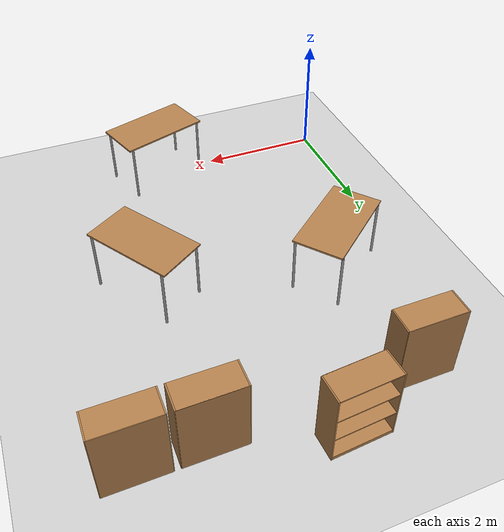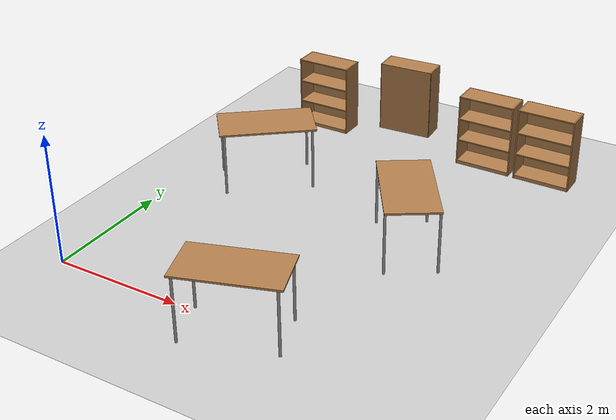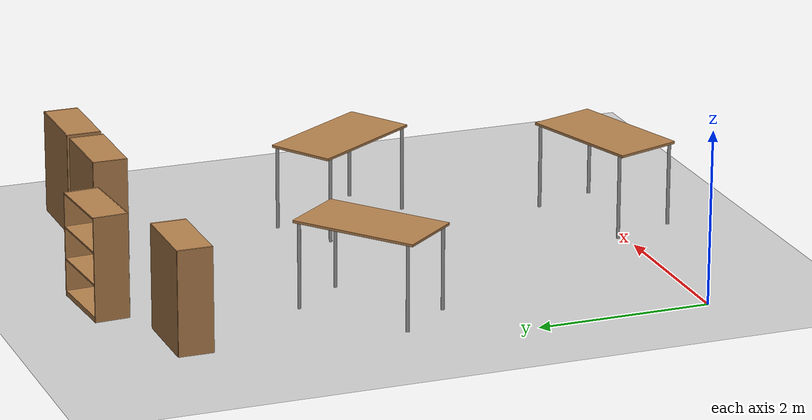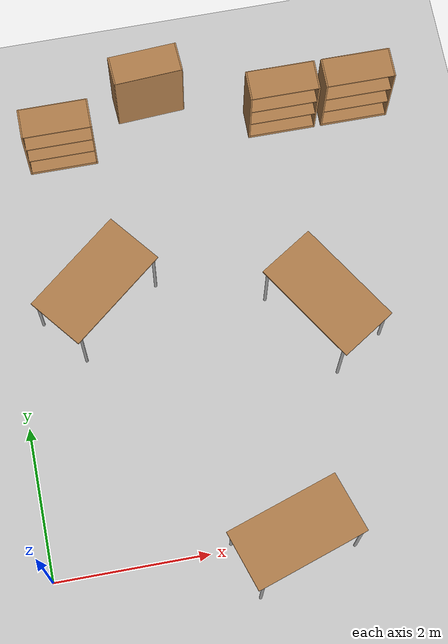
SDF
<sdf version="1.4">
 <world name="default">
  <model name="ground_plane">
   <static>1</static>
   <link name="link">
    <collision name="collision">
     <geometry><plane><normal>0 0 1</normal><size>100 100</size></plane></geometry>
     <surface><friction><ode><mu>100</mu><mu2>50</mu2></ode></friction></surface>
    </collision>
    <visual name="visual">
     <cast_shadows>0</cast_shadows>
     <geometry><plane><normal>0 0 1</normal><size>100 100</size></plane></geometry>
     <material>
      <script><uri>file://media/materials/scripts/gazebo.material</uri><name>Gazebo/Grey</name></script>
     </material>
    </visual>
    <velocity_decay><linear>0</linear><angular>0</angular></velocity_decay>
   </link>
  </model>
  <model name="table3">
   <static>1</static>
   <link name="link">
    <collision name="surface">
     <pose>0 0 1 0 -0 0</pose>
     <geometry><box><size>1.5 0.8 0.03</size></box></geometry>
     <surface><friction><ode><mu>0.6</mu><mu2>0.6</mu2></ode></friction></surface>
    </collision>
    <visual name="visual1">
     <pose>0 0 1 0 -0 0</pose>
     <geometry><box><size>1.5 0.8 0.03</size></box></geometry>
     <material>
      <script><uri>file://media/materials/scripts/gazebo.material</uri><name>Gazebo/Wood</name></script>
     </material>
    </visual>
    <collision name="front_left_leg">
     <pose>0.68 0.38 0.5 0 -0 0</pose>
     <geometry><cylinder><radius>0.02</radius><length>1</length></cylinder></geometry>
    </collision>
    <visual name="front_left_leg">
     <pose>0.68 0.38 0.5 0 -0 0</pose>
     <geometry><cylinder><radius>0.02</radius><length>1</length></cylinder></geometry>
     <material>
      <script><uri>file://media/materials/scripts/gazebo.material</uri><name>Gazebo/Grey</name></script>
     </material>
    </visual>
    <collision name="front_right_leg">
     <pose>0.68 -0.38 0.5 0 -0 0</pose>
     <geometry><cylinder><radius>0.02</radius><length>1</length></cylinder></geometry>
    </collision>
    <visual name="front_right_leg">
     <pose>0.68 -0.38 0.5 0 -0 0</pose>
     <geometry><cylinder><radius>0.02</radius><length>1</length></cylinder></geometry>
     <material>
      <script><uri>file://media/materials/scripts/gazebo.material</uri><name>Gazebo/Grey</name></script>
     </material>
    </visual>
    <collision name="back_right_leg">
     <pose>-0.68 -0.38 0.5 0 -0 0</pose>
     <geometry><cylinder><radius>0.02</radius><length>1</length></cylinder></geometry>
    </collision>
    <visual name="back_right_leg">
     <pose>-0.68 -0.38 0.5 0 -0 0</pose>
     <geometry><cylinder><radius>0.02</radius><length>1</length></cylinder></geometry>
     <material>
      <script><uri>file://media/materials/scripts/gazebo.material</uri><name>Gazebo/Grey</name></script>
     </material>
    </visual>
    <collision name="back_left_leg">
     <pose>-0.68 0.38 0.5 0 -0 0</pose>
     <geometry><cylinder><radius>0.02</radius><length>1</length></cylinder></geometry>
    </collision>
    <visual name="back_left_leg">
     <pose>-0.68 0.38 0.5 0 -0 0</pose>
     <geometry><cylinder><radius>0.02</radius><length>1</length></cylinder></geometry>
     <material>
      <script><uri>file://media/materials/scripts/gazebo.material</uri><name>Gazebo/Grey</name></script>
     </material>
    </visual>
    <velocity_decay><linear>0</linear><angular>0</angular></velocity_decay>
   </link>
   <pose>3.99958 2.80958 0 0 0 -1</pose>
  </model>
  <model name="table5">
   <static>1</static>
   <link name="link">
    <collision name="surface">
     <pose>0 0 1 0 -0 0</pose>
     <geometry><box><size>1.5 0.8 0.03</size></box></geometry>
     <surface><friction><ode><mu>0.6</mu><mu2>0.6</mu2></ode></friction></surface>
    </collision>
    <visual name="visual1">
     <pose>0 0 1 0 -0 0</pose>
     <geometry><box><size>1.5 0.8 0.03</size></box></geometry>
     <material>
      <script><uri>file://media/materials/scripts/gazebo.material</uri><name>Gazebo/Wood</name></script>
     </material>
    </visual>
    <collision name="front_left_leg">
     <pose>0.68 0.38 0.5 0 -0 0</pose>
     <geometry><cylinder><radius>0.02</radius><length>1</length></cylinder></geometry>
    </collision>
    <visual name="front_left_leg">
     <pose>0.68 0.38 0.5 0 -0 0</pose>
     <geometry><cylinder><radius>0.02</radius><length>1</length></cylinder></geometry>
     <material>
      <script><uri>file://media/materials/scripts/gazebo.material</uri><name>Gazebo/Grey</name></script>
     </material>
    </visual>
    <collision name="front_right_leg">
     <pose>0.68 -0.38 0.5 0 -0 0</pose>
     <geometry><cylinder><radius>0.02</radius><length>1</length></cylinder></geometry>
    </collision>
    <visual name="front_right_leg">
     <pose>0.68 -0.38 0.5 0 -0 0</pose>
     <geometry><cylinder><radius>0.02</radius><length>1</length></cylinder></geometry>
     <material>
      <script><uri>file://media/materials/scripts/gazebo.material</uri><name>Gazebo/Grey</name></script>
     </material>
    </visual>
    <collision name="back_right_leg">
     <pose>-0.68 -0.38 0.5 0 -0 0</pose>
     <geometry><cylinder><radius>0.02</radius><length>1</length></cylinder></geometry>
    </collision>
    <visual name="back_right_leg">
     <pose>-0.68 -0.38 0.5 0 -0 0</pose>
     <geometry><cylinder><radius>0.02</radius><length>1</length></cylinder></geometry>
     <material>
      <script><uri>file://media/materials/scripts/gazebo.material</uri><name>Gazebo/Grey</name></script>
     </material>
    </visual>
    <collision name="back_left_leg">
     <pose>-0.68 0.38 0.5 0 -0 0</pose>
     <geometry><cylinder><radius>0.02</radius><length>1</length></cylinder></geometry>
    </collision>
    <visual name="back_left_leg">
     <pose>-0.68 0.38 0.5 0 -0 0</pose>
     <geometry><cylinder><radius>0.02</radius><length>1</length></cylinder></geometry>
     <material>
      <script><uri>file://media/materials/scripts/gazebo.material</uri><name>Gazebo/Grey</name></script>
     </material>
    </visual>
    <velocity_decay><linear>0</linear><angular>0</angular></velocity_decay>
   </link>
   <pose>3.03624 -0.068461 0 0 -0 0.32</pose>
  </model>
  <model name="table8">
   <static>1</static>
   <link name="link">
    <collision name="surface">
     <pose>0 0 1 0 -0 0</pose>
     <geometry><box><size>1.5 0.8 0.03</size></box></geometry>
     <surface><friction><ode><mu>0.6</mu><mu2>0.6</mu2></ode></friction></surface>
    </collision>
    <visual name="visual1">
     <pose>0 0 1 0 -0 0</pose>
     <geometry><box><size>1.5 0.8 0.03</size></box></geometry>
     <material>
      <script><uri>file://media/materials/scripts/gazebo.material</uri><name>Gazebo/Wood</name></script>
     </material>
    </visual>
    <collision name="front_left_leg">
     <pose>0.68 0.38 0.5 0 -0 0</pose>
     <geometry><cylinder><radius>0.02</radius><length>1</length></cylinder></geometry>
    </collision>
    <visual name="front_left_leg">
     <pose>0.68 0.38 0.5 0 -0 0</pose>
     <geometry><cylinder><radius>0.02</radius><length>1</length></cylinder></geometry>
     <material>
      <script><uri>file://media/materials/scripts/gazebo.material</uri><name>Gazebo/Grey</name></script>
     </material>
    </visual>
    <collision name="front_right_leg">
     <pose>0.68 -0.38 0.5 0 -0 0</pose>
     <geometry><cylinder><radius>0.02</radius><length>1</length></cylinder></geometry>
    </collision>
    <visual name="front_right_leg">
     <pose>0.68 -0.38 0.5 0 -0 0</pose>
     <geometry><cylinder><radius>0.02</radius><length>1</length></cylinder></geometry>
     <material>
      <script><uri>file://media/materials/scripts/gazebo.material</uri><name>Gazebo/Grey</name></script>
     </material>
    </visual>
    <collision name="back_right_leg">
     <pose>-0.68 -0.38 0.5 0 -0 0</pose>
     <geometry><cylinder><radius>0.02</radius><length>1</length></cylinder></geometry>
    </collision>
    <visual name="back_right_leg">
     <pose>-0.68 -0.38 0.5 0 -0 0</pose>
     <geometry><cylinder><radius>0.02</radius><length>1</length></cylinder></geometry>
     <material>
      <script><uri>file://media/materials/scripts/gazebo.material</uri><name>Gazebo/Grey</name></script>
     </material>
    </visual>
    <collision name="back_left_leg">
     <pose>-0.68 0.38 0.5 0 -0 0</pose>
     <geometry><cylinder><radius>0.02</radius><length>1</length></cylinder></geometry>
    </collision>
    <visual name="back_left_leg">
     <pose>-0.68 0.38 0.5 0 -0 0</pose>
     <geometry><cylinder><radius>0.02</radius><length>1</length></cylinder></geometry>
     <material>
      <script><uri>file://media/materials/scripts/gazebo.material</uri><name>Gazebo/Grey</name></script>
     </material>
    </visual>
    <velocity_decay><linear>0</linear><angular>0</angular></velocity_decay>
   </link>
   <pose>1.16047 3.49208 0 0 -0 0.68</pose>
  </model>
  <model name="bookshelf2">
   <static>1</static>
   <link name="link">
    <inertial><mass>1</mass></inertial>
    <collision name="back">
     <pose>0 0.005 0.6 0 -0 0</pose>
     <geometry><box><size>0.9 0.01 1.2</size></box></geometry>
    </collision>
    <visual name="visual1">
     <pose>0 0.005 0.6 0 -0 0</pose>
     <geometry><box><size>0.9 0.01 1.2</size></box></geometry>
     <material>
      <script><uri>file://media/materials/scripts/gazebo.material</uri><name>Gazebo/Wood</name></script>
     </material>
    </visual>
    <collision name="left_side">
     <pose>0.45 -0.195 0.6 0 -0 0</pose>
     <geometry><box><size>0.02 0.4 1.2</size></box></geometry>
    </collision>
    <visual name="visual2">
     <pose>0.45 -0.195 0.6 0 -0 0</pose>
     <geometry><box><size>0.02 0.4 1.2</size></box></geometry>
     <material>
      <script><uri>file://media/materials/scripts/gazebo.material</uri><name>Gazebo/Wood</name></script>
     </material>
    </visual>
    <collision name="right_side">
     <pose>-0.45 -0.195 0.6 0 -0 0</pose>
     <geometry><box><size>0.02 0.4 1.2</size></box></geometry>
    </collision>
    <visual name="visual3">
     <pose>-0.45 -0.195 0.6 0 -0 0</pose>
     <geometry><box><size>0.02 0.4 1.2</size></box></geometry>
     <material>
      <script><uri>file://media/materials/scripts/gazebo.material</uri><name>Gazebo/Wood</name></script>
     </material>
    </visual>
    <collision name="bottom">
     <pose>0 -0.195 0.03 0 -0 0</pose>
     <geometry><box><size>0.88 0.4 0.06</size></box></geometry>
    </collision>
    <visual name="visual4">
     <pose>0 -0.195 0.03 0 -0 0</pose>
     <geometry><box><size>0.88 0.4 0.06</size></box></geometry>
     <material>
      <script><uri>file://media/materials/scripts/gazebo.material</uri><name>Gazebo/Wood</name></script>
     </material>
    </visual>
    <collision name="top">
     <pose>0 -0.195 1.19 0 -0 0</pose>
     <geometry><box><size>0.88 0.4 0.02</size></box></geometry>
    </collision>
    <visual name="visual5">
     <pose>0 -0.195 1.19 0 -0 0</pose>
     <geometry><box><size>0.88 0.4 0.02</size></box></geometry>
     <material>
      <script><uri>file://media/materials/scripts/gazebo.material</uri><name>Gazebo/Wood</name></script>
     </material>
    </visual>
    <collision name="low_shelf">
     <pose>0 -0.195 0.43 0 -0 0</pose>
     <geometry><box><size>0.88 0.4 0.02</size></box></geometry>
    </collision>
    <visual name="visual6">
     <pose>0 -0.195 0.43 0 -0 0</pose>
     <geometry><box><size>0.88 0.4 0.02</size></box></geometry>
     <material>
      <script><uri>file://media/materials/scripts/gazebo.material</uri><name>Gazebo/Wood</name></script>
     </material>
    </visual>
    <collision name="high_shelf">
     <pose>0 -0.195 0.8 0 -0 0</pose>
     <geometry><box><size>0.88 0.4 0.02</size></box></geometry>
    </collision>
    <visual name="visual7">
     <pose>0 -0.195 0.8 0 -0 0</pose>
     <geometry><box><size>0.88 0.4 0.02</size></box></geometry>
     <material>
      <script><uri>file://media/materials/scripts/gazebo.material</uri><name>Gazebo/Wood</name></script>
     </material>
    </visual>
    <velocity_decay><linear>0</linear><angular>0</angular></velocity_decay>
   </link>
   <pose>1 5.89 0 0 -0 0</pose>
  </model>
  <model name="bookshelf3">
   <static>1</static>
   <link name="link">
    <inertial><mass>1</mass></inertial>
    <collision name="back">
     <pose>0 0.005 0.6 0 -0 0</pose>
     <geometry><box><size>0.9 0.01 1.2</size></box></geometry>
    </collision>
    <visual name="visual1">
     <pose>0 0.005 0.6 0 -0 0</pose>
     <geometry><box><size>0.9 0.01 1.2</size></box></geometry>
     <material>
      <script><uri>file://media/materials/scripts/gazebo.material</uri><name>Gazebo/Wood</name></script>
     </material>
    </visual>
    <collision name="left_side">
     <pose>0.45 -0.195 0.6 0 -0 0</pose>
     <geometry><box><size>0.02 0.4 1.2</size></box></geometry>
    </collision>
    <visual name="visual2">
     <pose>0.45 -0.195 0.6 0 -0 0</pose>
     <geometry><box><size>0.02 0.4 1.2</size></box></geometry>
     <material>
      <script><uri>file://media/materials/scripts/gazebo.material</uri><name>Gazebo/Wood</name></script>
     </material>
    </visual>
    <collision name="right_side">
     <pose>-0.45 -0.195 0.6 0 -0 0</pose>
     <geometry><box><size>0.02 0.4 1.2</size></box></geometry>
    </collision>
    <visual name="visual3">
     <pose>-0.45 -0.195 0.6 0 -0 0</pose>
     <geometry><box><size>0.02 0.4 1.2</size></box></geometry>
     <material>
      <script><uri>file://media/materials/scripts/gazebo.material</uri><name>Gazebo/Wood</name></script>
     </material>
    </visual>
    <collision name="bottom">
     <pose>0 -0.195 0.03 0 -0 0</pose>
     <geometry><box><size>0.88 0.4 0.06</size></box></geometry>
    </collision>
    <visual name="visual4">
     <pose>0 -0.195 0.03 0 -0 0</pose>
     <geometry><box><size>0.88 0.4 0.06</size></box></geometry>
     <material>
      <script><uri>file://media/materials/scripts/gazebo.material</uri><name>Gazebo/Wood</name></script>
     </material>
    </visual>
    <collision name="top">
     <pose>0 -0.195 1.19 0 -0 0</pose>
     <geometry><box><size>0.88 0.4 0.02</size></box></geometry>
    </collision>
    <visual name="visual5">
     <pose>0 -0.195 1.19 0 -0 0</pose>
     <geometry><box><size>0.88 0.4 0.02</size></box></geometry>
     <material>
      <script><uri>file://media/materials/scripts/gazebo.material</uri><name>Gazebo/Wood</name></script>
     </material>
    </visual>
    <collision name="low_shelf">
     <pose>0 -0.195 0.43 0 -0 0</pose>
     <geometry><box><size>0.88 0.4 0.02</size></box></geometry>
    </collision>
    <visual name="visual6">
     <pose>0 -0.195 0.43 0 -0 0</pose>
     <geometry><box><size>0.88 0.4 0.02</size></box></geometry>
     <material>
      <script><uri>file://media/materials/scripts/gazebo.material</uri><name>Gazebo/Wood</name></script>
     </material>
    </visual>
    <collision name="high_shelf">
     <pose>0 -0.195 0.8 0 -0 0</pose>
     <geometry><box><size>0.88 0.4 0.02</size></box></geometry>
    </collision>
    <visual name="visual7">
     <pose>0 -0.195 0.8 0 -0 0</pose>
     <geometry><box><size>0.88 0.4 0.02</size></box></geometry>
     <material>
      <script><uri>file://media/materials/scripts/gazebo.material</uri><name>Gazebo/Wood</name></script>
     </material>
    </visual>
    <velocity_decay><linear>0</linear><angular>0</angular></velocity_decay>
   </link>
   <pose>2.29151 6.05753 0 0 0 -3.08</pose>
  </model>
  <model name="bookshelf5">
   <static>1</static>
   <link name="link">
    <inertial><mass>1</mass></inertial>
    <collision name="back">
     <pose>0 0.005 0.6 0 -0 0</pose>
     <geometry><box><size>0.9 0.01 1.2</size></box></geometry>
    </collision>
    <visual name="visual1">
     <pose>0 0.005 0.6 0 -0 0</pose>
     <geometry><box><size>0.9 0.01 1.2</size></box></geometry>
     <material>
      <script><uri>file://media/materials/scripts/gazebo.material</uri><name>Gazebo/Wood</name></script>
     </material>
    </visual>
    <collision name="left_side">
     <pose>0.45 -0.195 0.6 0 -0 0</pose>
     <geometry><box><size>0.02 0.4 1.2</size></box></geometry>
    </collision>
    <visual name="visual2">
     <pose>0.45 -0.195 0.6 0 -0 0</pose>
     <geometry><box><size>0.02 0.4 1.2</size></box></geometry>
     <material>
      <script><uri>file://media/materials/scripts/gazebo.material</uri><name>Gazebo/Wood</name></script>
     </material>
    </visual>
    <collision name="right_side">
     <pose>-0.45 -0.195 0.6 0 -0 0</pose>
     <geometry><box><size>0.02 0.4 1.2</size></box></geometry>
    </collision>
    <visual name="visual3">
     <pose>-0.45 -0.195 0.6 0 -0 0</pose>
     <geometry><box><size>0.02 0.4 1.2</size></box></geometry>
     <material>
      <script><uri>file://media/materials/scripts/gazebo.material</uri><name>Gazebo/Wood</name></script>
     </material>
    </visual>
    <collision name="bottom">
     <pose>0 -0.195 0.03 0 -0 0</pose>
     <geometry><box><size>0.88 0.4 0.06</size></box></geometry>
    </collision>
    <visual name="visual4">
     <pose>0 -0.195 0.03 0 -0 0</pose>
     <geometry><box><size>0.88 0.4 0.06</size></box></geometry>
     <material>
      <script><uri>file://media/materials/scripts/gazebo.material</uri><name>Gazebo/Wood</name></script>
     </material>
    </visual>
    <collision name="top">
     <pose>0 -0.195 1.19 0 -0 0</pose>
     <geometry><box><size>0.88 0.4 0.02</size></box></geometry>
    </collision>
    <visual name="visual5">
     <pose>0 -0.195 1.19 0 -0 0</pose>
     <geometry><box><size>0.88 0.4 0.02</size></box></geometry>
     <material>
      <script><uri>file://media/materials/scripts/gazebo.material</uri><name>Gazebo/Wood</name></script>
     </material>
    </visual>
    <collision name="low_shelf">
     <pose>0 -0.195 0.43 0 -0 0</pose>
     <geometry><box><size>0.88 0.4 0.02</size></box></geometry>
    </collision>
    <visual name="visual6">
     <pose>0 -0.195 0.43 0 -0 0</pose>
     <geometry><box><size>0.88 0.4 0.02</size></box></geometry>
     <material>
      <script><uri>file://media/materials/scripts/gazebo.material</uri><name>Gazebo/Wood</name></script>
     </material>
    </visual>
    <collision name="high_shelf">
     <pose>0 -0.195 0.8 0 -0 0</pose>
     <geometry><box><size>0.88 0.4 0.02</size></box></geometry>
    </collision>
    <visual name="visual7">
     <pose>0 -0.195 0.8 0 -0 0</pose>
     <geometry><box><size>0.88 0.4 0.02</size></box></geometry>
     <material>
      <script><uri>file://media/materials/scripts/gazebo.material</uri><name>Gazebo/Wood</name></script>
     </material>
    </visual>
    <velocity_decay><linear>0</linear><angular>0</angular></velocity_decay>
   </link>
   <pose>4 5.89 0 0 -0 0</pose>
  </model>
  <model name="bookshelf6">
   <static>1</static>
   <link name="link">
    <inertial><mass>1</mass></inertial>
    <collision name="back">
     <pose>0 0.005 0.6 0 -0 0</pose>
     <geometry><box><size>0.9 0.01 1.2</size></box></geometry>
    </collision>
    <visual name="visual1">
     <pose>0 0.005 0.6 0 -0 0</pose>
     <geometry><box><size>0.9 0.01 1.2</size></box></geometry>
     <material>
      <script><uri>file://media/materials/scripts/gazebo.material</uri><name>Gazebo/Wood</name></script>
     </material>
    </visual>
    <collision name="left_side">
     <pose>0.45 -0.195 0.6 0 -0 0</pose>
     <geometry><box><size>0.02 0.4 1.2</size></box></geometry>
    </collision>
    <visual name="visual2">
     <pose>0.45 -0.195 0.6 0 -0 0</pose>
     <geometry><box><size>0.02 0.4 1.2</size></box></geometry>
     <material>
      <script><uri>file://media/materials/scripts/gazebo.material</uri><name>Gazebo/Wood</name></script>
     </material>
    </visual>
    <collision name="right_side">
     <pose>-0.45 -0.195 0.6 0 -0 0</pose>
     <geometry><box><size>0.02 0.4 1.2</size></box></geometry>
    </collision>
    <visual name="visual3">
     <pose>-0.45 -0.195 0.6 0 -0 0</pose>
     <geometry><box><size>0.02 0.4 1.2</size></box></geometry>
     <material>
      <script><uri>file://media/materials/scripts/gazebo.material</uri><name>Gazebo/Wood</name></script>
     </material>
    </visual>
    <collision name="bottom">
     <pose>0 -0.195 0.03 0 -0 0</pose>
     <geometry><box><size>0.88 0.4 0.06</size></box></geometry>
    </collision>
    <visual name="visual4">
     <pose>0 -0.195 0.03 0 -0 0</pose>
     <geometry><box><size>0.88 0.4 0.06</size></box></geometry>
     <material>
      <script><uri>file://media/materials/scripts/gazebo.material</uri><name>Gazebo/Wood</name></script>
     </material>
    </visual>
    <collision name="top">
     <pose>0 -0.195 1.19 0 -0 0</pose>
     <geometry><box><size>0.88 0.4 0.02</size></box></geometry>
    </collision>
    <visual name="visual5">
     <pose>0 -0.195 1.19 0 -0 0</pose>
     <geometry><box><size>0.88 0.4 0.02</size></box></geometry>
     <material>
      <script><uri>file://media/materials/scripts/gazebo.material</uri><name>Gazebo/Wood</name></script>
     </material>
    </visual>
    <collision name="low_shelf">
     <pose>0 -0.195 0.43 0 -0 0</pose>
     <geometry><box><size>0.88 0.4 0.02</size></box></geometry>
    </collision>
    <visual name="visual6">
     <pose>0 -0.195 0.43 0 -0 0</pose>
     <geometry><box><size>0.88 0.4 0.02</size></box></geometry>
     <material>
      <script><uri>file://media/materials/scripts/gazebo.material</uri><name>Gazebo/Wood</name></script>
     </material>
    </visual>
    <collision name="high_shelf">
     <pose>0 -0.195 0.8 0 -0 0</pose>
     <geometry><box><size>0.88 0.4 0.02</size></box></geometry>
    </collision>
    <visual name="visual7">
     <pose>0 -0.195 0.8 0 -0 0</pose>
     <geometry><box><size>0.88 0.4 0.02</size></box></geometry>
     <material>
      <script><uri>file://media/materials/scripts/gazebo.material</uri><name>Gazebo/Wood</name></script>
     </material>
    </visual>
    <velocity_decay><linear>0</linear><angular>0</angular></velocity_decay>
   </link>
   <pose>5 5.89 0 0 -0 0</pose>
  </model>
 </world>
</sdf>
